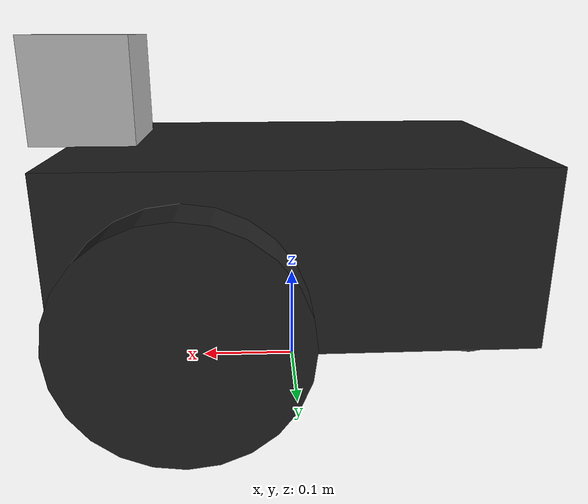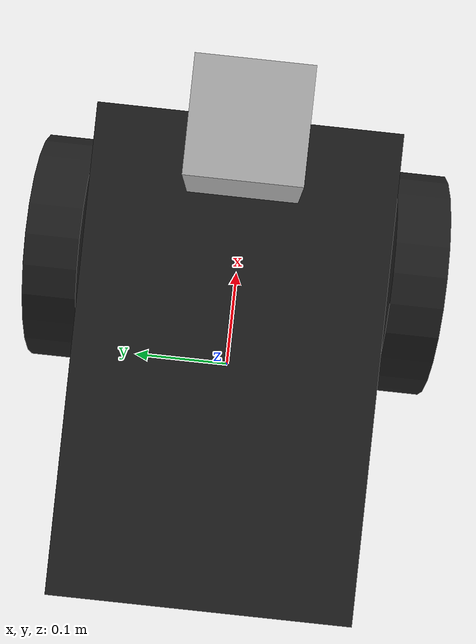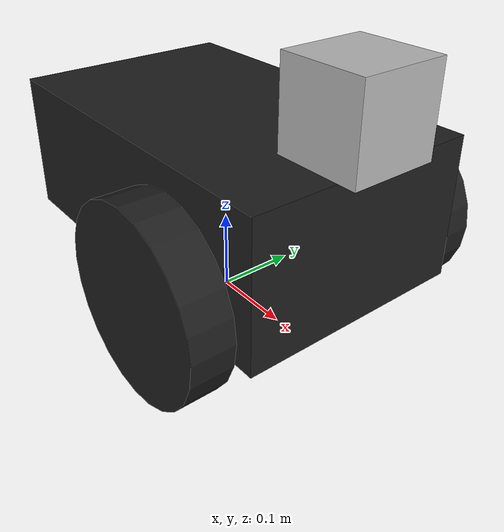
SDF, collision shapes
<?xml version='1.0'?>
<sdf version='1.7'>
  <model name='pioneer2dx'>
    <link name='pioneer2dx::chassis'>
      <pose>-0 -0 0.16 0 -0 0</pose>
      <inertial>
        <mass>5.67</mass>
        <inertia>
          <ixx>0.07</ixx>
          <iyy>0.08</iyy>
          <izz>0.1</izz>
          <ixy>0</ixy>
          <ixz>0</ixz>
          <iyz>0</iyz>
        </inertia>
        <pose>0 0 0 0 -0 0</pose>
      </inertial>
      <self_collide>0</self_collide>
      <enable_wind>0</enable_wind>
      <kinematic>0</kinematic>
      <visual name='castor_visual'>
        <pose>-0.2 0 -0.12 0 -0 0</pose>
        <geometry>
          <sphere>
            <radius>0.04</radius>
          </sphere>
        </geometry>
        <material>
          <script>
            <uri>file://media/materials/scripts/gazebo.material</uri>
            <name>Gazebo/FlatBlack</name>
          </script>
          <shader type='pixel'/>
        </material>
        <transparency>0</transparency>
        <cast_shadows>1</cast_shadows>
      </visual>
      <visual name='visual'>
        <pose>0 0 0.04 0 -0 0</pose>
        <geometry>
          <mesh>
            <uri>model://pioneer2dx/meshes/chassis.dae</uri>
          </mesh>
        </geometry>
        <material>
          <shader type='pixel'/>
        </material>
        <transparency>0</transparency>
        <cast_shadows>1</cast_shadows>
      </visual>
      <collision name='collision'>
        <laser_retro>0</laser_retro>
        <max_contacts>10</max_contacts>
        <pose>0 0 0 0 -0 0</pose>
        <geometry>
          <box>
            <size>0.445 0.277 0.17</size>
          </box>
        </geometry>
        <surface>
          <friction>
            <ode>
              <mu>1</mu>
              <mu2>1</mu2>
              <fdir1>0 0 0</fdir1>
              <slip1>0</slip1>
              <slip2>0</slip2>
            </ode>
            <torsional>
              <coefficient>1</coefficient>
              <patch_radius>0</patch_radius>
              <surface_radius>0</surface_radius>
              <use_patch_radius>1</use_patch_radius>
              <ode>
                <slip>0</slip>
              </ode>
            </torsional>
          </friction>
          <bounce>
            <restitution_coefficient>0</restitution_coefficient>
            <threshold>1e+06</threshold>
          </bounce>
          <contact>
            <collide_without_contact>0</collide_without_contact>
            <collide_without_contact_bitmask>1</collide_without_contact_bitmask>
            <collide_bitmask>1</collide_bitmask>
            <ode>
              <soft_cfm>0</soft_cfm>
              <soft_erp>0.2</soft_erp>
              <kp>1e+13</kp>
              <kd>1</kd>
              <max_vel>0.01</max_vel>
              <min_depth>0</min_depth>
            </ode>
            <bullet>
              <split_impulse>1</split_impulse>
              <split_impulse_penetration_threshold>-0.01</split_impulse_penetration_threshold>
              <soft_cfm>0</soft_cfm>
              <soft_erp>0.2</soft_erp>
              <kp>1e+13</kp>
              <kd>1</kd>
            </bullet>
          </contact>
        </surface>
      </collision>
      <collision name='castor_collision'>
        <laser_retro>0</laser_retro>
        <max_contacts>10</max_contacts>
        <pose>-0.2 0 -0.12 0 -0 0</pose>
        <geometry>
          <sphere>
            <radius>0.04</radius>
          </sphere>
        </geometry>
        <surface>
          <friction>
            <ode>
              <mu>0</mu>
              <mu2>0</mu2>
              <fdir1>0 0 0</fdir1>
              <slip1>1</slip1>
              <slip2>1</slip2>
            </ode>
            <torsional>
              <coefficient>1</coefficient>
              <patch_radius>0</patch_radius>
              <surface_radius>0</surface_radius>
              <use_patch_radius>1</use_patch_radius>
              <ode>
                <slip>0</slip>
              </ode>
            </torsional>
          </friction>
          <bounce>
            <restitution_coefficient>0</restitution_coefficient>
            <threshold>1e+06</threshold>
          </bounce>
          <contact>
            <collide_without_contact>0</collide_without_contact>
            <collide_without_contact_bitmask>1</collide_without_contact_bitmask>
            <collide_bitmask>1</collide_bitmask>
            <ode>
              <soft_cfm>0</soft_cfm>
              <soft_erp>0.2</soft_erp>
              <kp>1e+13</kp>
              <kd>1</kd>
              <max_vel>0.01</max_vel>
              <min_depth>0</min_depth>
            </ode>
            <bullet>
              <split_impulse>1</split_impulse>
              <split_impulse_penetration_threshold>-0.01</split_impulse_penetration_threshold>
              <soft_cfm>0</soft_cfm>
              <soft_erp>0.2</soft_erp>
              <kp>1e+13</kp>
              <kd>1</kd>
            </bullet>
          </contact>
        </surface>
      </collision>
    </link>
    <link name='camera::link'>
      <inertial>
        <mass>0.1</mass>
        <inertia>
          <ixx>0.000166667</ixx>
          <iyy>0.000166667</iyy>
          <izz>0.000166667</izz>
          <ixy>0</ixy>
          <ixz>0</ixz>
          <iyz>0</iyz>
        </inertia>
        <pose>0 0 0 0 -0 0</pose>
      </inertial>
      <sensor name='camera' type='camera'>
        <camera>
          <horizontal_fov>1.047</horizontal_fov>
          <image>
            <width>960</width>
            <height>720</height>
          </image>
          <clip>
            <near>0.1</near>
            <far>100</far>
          </clip>
        </camera>
        <always_on>1</always_on>
        <update_rate>30</update_rate>
        <visualize>1</visualize>
        <plugin name='camera_controller' filename='libgazebo_ros_camera.so'>
          <alwaysOn>1</alwaysOn>
          <updateRate>0.0</updateRate>
          <cameraName>camera1</cameraName>
          <imageTopicName>image_raw</imageTopicName>
          <cameraInfoTopicName>camera_info</cameraInfoTopicName>
          <frameName>camera_link</frameName>
          <hackBaseline>0.07</hackBaseline>
          <distortionK1>0.0</distortionK1>
          <distortionK2>0.0</distortionK2>
          <distortionK3>0.0</distortionK3>
          <distortionT1>0.0</distortionT1>
          <distortionT2>0.0</distortionT2>
        </plugin>
      </sensor>
      <pose>0.2 0 0.3 0 -0 0</pose>
      <self_collide>0</self_collide>
      <enable_wind>0</enable_wind>
      <kinematic>0</kinematic>
      <visual name='visual'>
        <geometry>
          <box>
            <size>0.1 0.1 0.1</size>
          </box>
        </geometry>
        <material>
          <shader type='pixel'/>
        </material>
        <pose>0 0 0 0 -0 0</pose>
        <transparency>0</transparency>
        <cast_shadows>1</cast_shadows>
      </visual>
      <collision name='collision'>
        <laser_retro>0</laser_retro>
        <max_contacts>10</max_contacts>
        <pose>0 0 0 0 -0 0</pose>
        <geometry>
          <box>
            <size>0.1 0.1 0.1</size>
          </box>
        </geometry>
        <surface>
          <friction>
            <ode>
              <mu>1</mu>
              <mu2>1</mu2>
              <fdir1>0 0 0</fdir1>
              <slip1>0</slip1>
              <slip2>0</slip2>
            </ode>
            <torsional>
              <coefficient>1</coefficient>
              <patch_radius>0</patch_radius>
              <surface_radius>0</surface_radius>
              <use_patch_radius>1</use_patch_radius>
              <ode>
                <slip>0</slip>
              </ode>
            </torsional>
          </friction>
          <bounce>
            <restitution_coefficient>0</restitution_coefficient>
            <threshold>1e+06</threshold>
          </bounce>
          <contact>
            <collide_without_contact>0</collide_without_contact>
            <collide_without_contact_bitmask>1</collide_without_contact_bitmask>
            <collide_bitmask>1</collide_bitmask>
            <ode>
              <soft_cfm>0</soft_cfm>
              <soft_erp>0.2</soft_erp>
              <kp>1e+13</kp>
              <kd>1</kd>
              <max_vel>0.01</max_vel>
              <min_depth>0</min_depth>
            </ode>
            <bullet>
              <split_impulse>1</split_impulse>
              <split_impulse_penetration_threshold>-0.01</split_impulse_penetration_threshold>
              <soft_cfm>0</soft_cfm>
              <soft_erp>0.2</soft_erp>
              <kp>1e+13</kp>
              <kd>1</kd>
            </bullet>
          </contact>
        </surface>
      </collision>
    </link>
    <link name='pioneer2dx::left_wheel'>
      <pose>0.1 0.17 0.11 0.000988 1.5707 1.57169</pose>
      <inertial>
        <mass>1.5</mass>
        <inertia>
          <ixx>0.0051</ixx>
          <iyy>0.0051</iyy>
          <izz>0.009</izz>
          <ixy>0</ixy>
          <ixz>0</ixz>
          <iyz>0</iyz>
        </inertia>
        <pose>0 0 0 0 -0 0</pose>
      </inertial>
      <self_collide>0</self_collide>
      <enable_wind>0</enable_wind>
      <kinematic>0</kinematic>
      <visual name='visual'>
        <geometry>
          <cylinder>
            <radius>0.11</radius>
            <length>0.05</length>
          </cylinder>
        </geometry>
        <material>
          <script>
            <uri>file://media/materials/scripts/gazebo.material</uri>
            <name>Gazebo/FlatBlack</name>
          </script>
          <shader type='pixel'/>
        </material>
        <pose>0 0 0 0 -0 0</pose>
        <transparency>0</transparency>
        <cast_shadows>1</cast_shadows>
      </visual>
      <collision name='collision'>
        <laser_retro>0</laser_retro>
        <max_contacts>10</max_contacts>
        <pose>0 0 0 0 -0 0</pose>
        <geometry>
          <cylinder>
            <radius>0.11</radius>
            <length>0.05</length>
          </cylinder>
        </geometry>
        <surface>
          <friction>
            <ode>
              <mu>100000</mu>
              <mu2>100000</mu2>
              <fdir1>0 0 0</fdir1>
              <slip1>0</slip1>
              <slip2>0</slip2>
            </ode>
            <torsional>
              <coefficient>1</coefficient>
              <patch_radius>0</patch_radius>
              <surface_radius>0</surface_radius>
              <use_patch_radius>1</use_patch_radius>
              <ode>
                <slip>0</slip>
              </ode>
            </torsional>
          </friction>
          <bounce>
            <restitution_coefficient>0</restitution_coefficient>
            <threshold>1e+06</threshold>
          </bounce>
          <contact>
            <collide_without_contact>0</collide_without_contact>
            <collide_without_contact_bitmask>1</collide_without_contact_bitmask>
            <collide_bitmask>1</collide_bitmask>
            <ode>
              <soft_cfm>0</soft_cfm>
              <soft_erp>0.2</soft_erp>
              <kp>1e+13</kp>
              <kd>1</kd>
              <max_vel>0.01</max_vel>
              <min_depth>0</min_depth>
            </ode>
            <bullet>
              <split_impulse>1</split_impulse>
              <split_impulse_penetration_threshold>-0.01</split_impulse_penetration_threshold>
              <soft_cfm>0</soft_cfm>
              <soft_erp>0.2</soft_erp>
              <kp>1e+13</kp>
              <kd>1</kd>
            </bullet>
          </contact>
        </surface>
      </collision>
    </link>
    <link name='pioneer2dx::right_wheel'>
      <pose>0.1 -0.17 0.11 0.000988 1.5707 1.57169</pose>
      <inertial>
        <mass>1.5</mass>
        <inertia>
          <ixx>0.0051</ixx>
          <iyy>0.0051</iyy>
          <izz>0.009</izz>
          <ixy>0</ixy>
          <ixz>0</ixz>
          <iyz>0</iyz>
        </inertia>
        <pose>0 0 0 0 -0 0</pose>
      </inertial>
      <self_collide>0</self_collide>
      <enable_wind>0</enable_wind>
      <kinematic>0</kinematic>
      <visual name='visual'>
        <geometry>
          <cylinder>
            <radius>0.11</radius>
            <length>0.05</length>
          </cylinder>
        </geometry>
        <material>
          <script>
            <uri>file://media/materials/scripts/gazebo.material</uri>
            <name>Gazebo/FlatBlack</name>
          </script>
          <shader type='pixel'/>
        </material>
        <pose>0 0 0 0 -0 0</pose>
        <transparency>0</transparency>
        <cast_shadows>1</cast_shadows>
      </visual>
      <collision name='collision'>
        <laser_retro>0</laser_retro>
        <max_contacts>10</max_contacts>
        <pose>0 0 0 0 -0 0</pose>
        <geometry>
          <cylinder>
            <radius>0.11</radius>
            <length>0.05</length>
          </cylinder>
        </geometry>
        <surface>
          <friction>
            <ode>
              <mu>100000</mu>
              <mu2>100000</mu2>
              <fdir1>0 0 0</fdir1>
              <slip1>0</slip1>
              <slip2>0</slip2>
            </ode>
            <torsional>
              <coefficient>1</coefficient>
              <patch_radius>0</patch_radius>
              <surface_radius>0</surface_radius>
              <use_patch_radius>1</use_patch_radius>
              <ode>
                <slip>0</slip>
              </ode>
            </torsional>
          </friction>
          <bounce>
            <restitution_coefficient>0</restitution_coefficient>
            <threshold>1e+06</threshold>
          </bounce>
          <contact>
            <collide_without_contact>0</collide_without_contact>
            <collide_without_contact_bitmask>1</collide_without_contact_bitmask>
            <collide_bitmask>1</collide_bitmask>
            <ode>
              <soft_cfm>0</soft_cfm>
              <soft_erp>0.2</soft_erp>
              <kp>1e+13</kp>
              <kd>1</kd>
              <max_vel>0.01</max_vel>
              <min_depth>0</min_depth>
            </ode>
            <bullet>
              <split_impulse>1</split_impulse>
              <split_impulse_penetration_threshold>-0.01</split_impulse_penetration_threshold>
              <soft_cfm>0</soft_cfm>
              <soft_erp>0.2</soft_erp>
              <kp>1e+13</kp>
              <kd>1</kd>
            </bullet>
          </contact>
        </surface>
      </collision>
    </link>
    <joint name='pioneer2dx::left_wheel_hinge' type='revolute'>
      <parent>pioneer2dx::chassis</parent>
      <child>pioneer2dx::left_wheel</child>
      <pose>0 0 -0.03 0 -0 0</pose>
      <axis>
        <xyz>9.6e-05 9.6e-05 1</xyz>
        <limit>
          <lower>-1e+16</lower>
          <upper>1e+16</upper>
          <effort>-1</effort>
          <velocity>-1</velocity>
        </limit>
        <dynamics>
          <spring_reference>0</spring_reference>
          <spring_stiffness>0</spring_stiffness>
          <damping>0</damping>
          <friction>0</friction>
        </dynamics>
      </axis>
      <physics>
        <ode>
          <limit>
            <cfm>0</cfm>
            <erp>0.2</erp>
          </limit>
          <suspension>
            <cfm>0</cfm>
            <erp>0.2</erp>
          </suspension>
        </ode>
      </physics>
    </joint>
    <joint name='pioneer2dx::right_wheel_hinge' type='revolute'>
      <parent>pioneer2dx::chassis</parent>
      <child>pioneer2dx::right_wheel</child>
      <pose>0 0 0.03 0 -0 0</pose>
      <axis>
        <xyz>9.6e-05 9.6e-05 1</xyz>
        <limit>
          <lower>-1e+16</lower>
          <upper>1e+16</upper>
          <effort>-1</effort>
          <velocity>-1</velocity>
        </limit>
        <dynamics>
          <spring_reference>0</spring_reference>
          <spring_stiffness>0</spring_stiffness>
          <damping>0</damping>
          <friction>0</friction>
        </dynamics>
      </axis>
      <physics>
        <ode>
          <limit>
            <cfm>0</cfm>
            <erp>0.2</erp>
          </limit>
          <suspension>
            <cfm>0</cfm>
            <erp>0.2</erp>
          </suspension>
        </ode>
      </physics>
    </joint>
    <joint name='chassis_JOINT_0' type='fixed'>
      <parent>pioneer2dx::chassis</parent>
      <child>camera::link</child>
      <pose>0 0 0 0 -0 0</pose>
      <physics>
        <ode>
          <limit>
            <cfm>0</cfm>
            <erp>0.2</erp>
          </limit>
          <suspension>
            <cfm>0</cfm>
            <erp>0.2</erp>
          </suspension>
        </ode>
      </physics>
    </joint>
    <static>0</static>
    <allow_auto_disable>1</allow_auto_disable>
    <plugin name='differential_drive_controller' filename='libgazebo_ros_diff_drive.so'>
      <alwaysOn>1</alwaysOn>
      <updateRate>100</updateRate>
      <leftJoint>pioneer2dx::left_wheel_hinge</leftJoint>
      <rightJoint>pioneer2dx::right_wheel_hinge</rightJoint>
      <wheelSeparation>0.39</wheelSeparation>
      <wheelDiameter>0.15</wheelDiameter>
      <torque>5</torque>
      <commandTopic>cmd_vel</commandTopic>
      <odometryTopic>odom</odometryTopic>
      <odometryFrame>odom</odometryFrame>
      <robotBaseFrame>chassis</robotBaseFrame>
    </plugin>
  </model>
</sdf>
